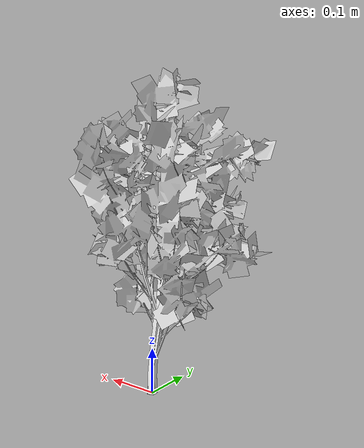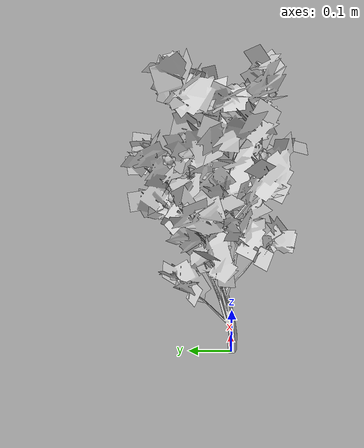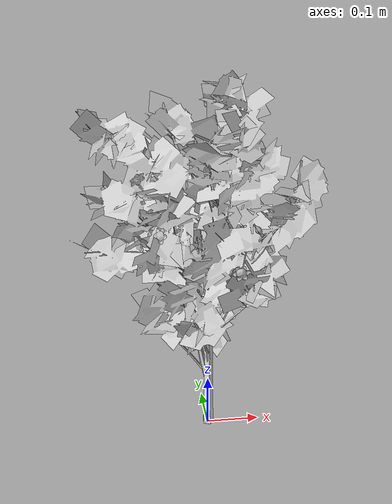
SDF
<?xml version="1.0" ?>
<sdf version="1.6">
  <model name="tree-flowers">
    <!--Skew-Seed:3806915885-->
    <static>true</static>
    <link name="link"/>
    <include>
      <uri>model://tree-mesh</uri>
      <pose>0 0 0 0 0 0</pose>
    </include>
    <joint name="tree_joint" type="fixed">
      <child>tree-mesh::link</child>
      <parent>link</parent>
    </joint>
    <include>
      <name>bramble_0</name>
      <uri>model://bramble</uri>
      <pose> 0.06901405093166102 0.11399043466612431 0.4447866307982011 -0.8214229099730358 2.048286599768984 0.0</pose>
    </include>
    <joint name="flower_joint_0" type="fixed">
      <child>bramble_0::flower_link</child>
      <parent>link</parent>
    </joint>
    <include>
      <name>bramble_1</name>
      <uri>model://bramble</uri>
      <pose> 0.07342670022800296 0.07553922171419167 0.5125203152279469 -1.176776902423707 2.267712625074483 0.0</pose>
    </include>
    <joint name="flower_joint_1" type="fixed">
      <child>bramble_1::flower_link</child>
      <parent>link</parent>
    </joint>
    <include>
      <name>bramble_2</name>
      <uri>model://bramble</uri>
      <pose> 0.0782591952369888 0.07900126290521912 0.5410868080320406 -1.0540077122468734 1.0192295000052445 0.0</pose>
    </include>
    <joint name="flower_joint_2" type="fixed">
      <child>bramble_2::flower_link</child>
      <parent>link</parent>
    </joint>
    <include>
      <name>bramble_3</name>
      <uri>model://bramble</uri>
      <pose> 0.051578165818188734 0.08669006298134606 0.5647578176548571 -0.6130804492285695 0.7939266445336505 0.0</pose>
    </include>
    <joint name="flower_joint_3" type="fixed">
      <child>bramble_3::flower_link</child>
      <parent>link</parent>
    </joint>
    <include>
      <name>bramble_4</name>
      <uri>model://bramble</uri>
      <pose> 0.05242792978197568 -0.07256855315921072 0.37918197476005067 1.5771357247876647 2.0238863041602455 0.0</pose>
    </include>
    <joint name="flower_joint_4" type="fixed">
      <child>bramble_4::flower_link</child>
      <parent>link</parent>
    </joint>
    <include>
      <name>bramble_5</name>
      <uri>model://bramble</uri>
      <pose> 0.10132337810487624 0.09287517913375493 0.39346133098272423 -0.47292437488456485 2.1141235084730177 0.0</pose>
    </include>
    <joint name="flower_joint_5" type="fixed">
      <child>bramble_5::flower_link</child>
      <parent>link</parent>
    </joint>
    <include>
      <name>bramble_6</name>
      <uri>model://bramble</uri>
      <pose> -0.14125266638059222 0.12194390067538195 0.3803678392753212 -2.024609416680094 1.3495268953527821 0.0</pose>
    </include>
    <joint name="flower_joint_6" type="fixed">
      <child>bramble_6::flower_link</child>
      <parent>link</parent>
    </joint>
    <include>
      <name>bramble_7</name>
      <uri>model://bramble</uri>
      <pose> 0.08073144671390126 0.08801677732599575 0.5191564328524783 -1.2740545824498013 1.0800032260265904 0.0</pose>
    </include>
    <joint name="flower_joint_7" type="fixed">
      <child>bramble_7::flower_link</child>
      <parent>link</parent>
    </joint>
    <include>
      <name>bramble_8</name>
      <uri>model://bramble</uri>
      <pose> 0.06406514312459588 0.11626680191905624 0.5623129303507945 -0.5054917431917543 0.9377342856917379 0.0</pose>
    </include>
    <joint name="flower_joint_8" type="fixed">
      <child>bramble_8::flower_link</child>
      <parent>link</parent>
    </joint>
    <include>
      <name>bramble_9</name>
      <uri>model://bramble</uri>
      <pose> 0.05063671788755515 -0.07020980229836263 0.466477359385818 1.6758128622705577 2.273668400587132 0.0</pose>
    </include>
    <joint name="flower_joint_9" type="fixed">
      <child>bramble_9::flower_link</child>
      <parent>link</parent>
    </joint>
    <include>
      <name>bramble_10</name>
      <uri>model://bramble</uri>
      <pose> -0.12821123405387336 0.12871508279764943 0.45548087935346127 -2.6864848567177537 1.220243210576238 0.0</pose>
    </include>
    <joint name="flower_joint_10" type="fixed">
      <child>bramble_10::flower_link</child>
      <parent>link</parent>
    </joint>
    <include>
      <name>bramble_11</name>
      <uri>model://bramble</uri>
      <pose> -0.08530710915720344 0.05777949940626536 0.542380065104991 -2.2443759557578913 1.479110683411088 0.0</pose>
    </include>
    <joint name="flower_joint_11" type="fixed">
      <child>bramble_11::flower_link</child>
      <parent>link</parent>
    </joint>
    <include>
      <name>bramble_12</name>
      <uri>model://bramble</uri>
      <pose> 0.08435838872526308 -0.051489596457563895 0.4522567429874503 -0.03684022166931722 0.9170565881090571 0.0</pose>
    </include>
    <joint name="flower_joint_12" type="fixed">
      <child>bramble_12::flower_link</child>
      <parent>link</parent>
    </joint>
    <include>
      <name>bramble_13</name>
      <uri>model://bramble</uri>
      <pose> 0.07034411654871733 0.10649987502397111 0.4989717324601136 -0.6944531907893882 1.7215188648815727 0.0</pose>
    </include>
    <joint name="flower_joint_13" type="fixed">
      <child>bramble_13::flower_link</child>
      <parent>link</parent>
    </joint>
    <include>
      <name>bramble_14</name>
      <uri>model://bramble</uri>
      <pose> 0.06318880612336217 0.08937600988817275 0.5285887606409977 -0.347670342683187 1.823409576901336 0.0</pose>
    </include>
    <joint name="flower_joint_14" type="fixed">
      <child>bramble_14::flower_link</child>
      <parent>link</parent>
    </joint>
    <include>
      <name>bramble_15</name>
      <uri>model://bramble</uri>
      <pose> 0.0887822080211482 0.05629492060514306 0.4586246984279546 -0.9761016783348848 1.011685330444546 0.0</pose>
    </include>
    <joint name="flower_joint_15" type="fixed">
      <child>bramble_15::flower_link</child>
      <parent>link</parent>
    </joint>
    <include>
      <name>bramble_16</name>
      <uri>model://bramble</uri>
      <pose> -0.12642500200981377 0.05269271698401397 0.519956144969322 -2.1661197121053624 2.272669722117323 0.0</pose>
    </include>
    <joint name="flower_joint_16" type="fixed">
      <child>bramble_16::flower_link</child>
      <parent>link</parent>
    </joint>
    <include>
      <name>bramble_17</name>
      <uri>model://bramble</uri>
      <pose> -0.09626807621415785 -0.06079507718019916 0.4595924407912318 -3.7097139916781305 2.075107838060957 0.0</pose>
    </include>
    <joint name="flower_joint_17" type="fixed">
      <child>bramble_17::flower_link</child>
      <parent>link</parent>
    </joint>
  </model>
</sdf>

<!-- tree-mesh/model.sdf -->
<sdf version="1.6">
  <model name="tree-mesh">
    <static>true</static>
    <link name="link">

      <collision name="collision">
        <geometry>
          <mesh>
            <uri>model://tree-mesh/meshes/new_tree.dae</uri>
            <scale>0.0625 0.0625 0.0625</scale>
          </mesh>
        </geometry>
      </collision>

      <!-- simplified collision for sake of speed since leaves shouldn't be blocking anyway -->

      <visual name="leaves">
        <geometry>
          <mesh>
            <uri>model://tree-mesh/meshes/leaves.dae</uri>
            <scale>0.0325 0.0325 0.0325</scale>
          </mesh>
        </geometry>
        <material>
          <script>
            <uri>model://tree-mesh/materials/scripts/</uri>
            <uri>model://tree-mesh/materials/textures/</uri>
            <name>NewTree/Branch</name>
          </script>
        </material>
      </visual>
      <visual name="bark">
        <geometry>
          <mesh>
            <uri>model://tree-mesh/meshes/bark.dae</uri>
            <scale>0.0325 0.0325 0.0325</scale>
          </mesh>
        </geometry>
        <material>
          <script>
            <uri>model://tree-mesh/materials/scripts/</uri>
            <uri>model://tree-mesh/materials/textures/</uri>
            <name>NewTree/Bark</name>
          </script>
        </material>
      </visual>
    </link>
  </model>
</sdf>

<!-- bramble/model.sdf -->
<sdf version="1.6">
  <model name="bramble">
    <static>true</static>
    <link name="flower_link">
      <collision name="body_collision">
        <geometry>
          <mesh>
            <uri>model://bramble/meshes/bramble.dae</uri>
            <scale>0.2 0.2 0.2</scale>
          </mesh>
        </geometry>
      </collision>
      <visual name="petals">
        <geometry>
          <mesh>
            <uri>model://bramble/meshes/bramble.dae</uri>
            <scale>0.2 0.2 0.2</scale>
            <submesh>
              <name>petal</name>
            </submesh>
          </mesh>
        </geometry>
        <material>
          <script>
            <uri>model://bramble/materials/scripts/</uri>
            <uri>model://bramble/materials/textures/</uri>
            <name>Bramble/Petal</name>
          </script>
        </material>
      </visual>
      <visual name="carpel">
        <geometry>
          <mesh>
            <uri>model://bramble/meshes/bramble.dae</uri>
            <scale>0.2 0.2 0.2</scale>
            <submesh>
              <name>carpel</name>
            </submesh>
          </mesh>
        </geometry>
        <material>
          <script>
            <uri>model://bramble/materials/scripts/</uri>
            <uri>model://bramble/materials/textures/</uri>
            <name>Bramble/Carpel</name>
          </script>
        </material>
      </visual>
      <visual name="stamen">
        <geometry>
          <mesh>
            <uri>model://bramble/meshes/bramble.dae</uri>
            <scale>0.2 0.2 0.2</scale>
            <submesh>
              <name>stamen</name>
            </submesh>
          </mesh>
        </geometry>
        <material>
          <script>
            <uri>model://bramble/materials/scripts/</uri>
            <uri>model://bramble/materials/textures/</uri>
            <name>Bramble/Stamen</name>
          </script>
        </material>
      </visual>
    </link>
  </model>
</sdf>
